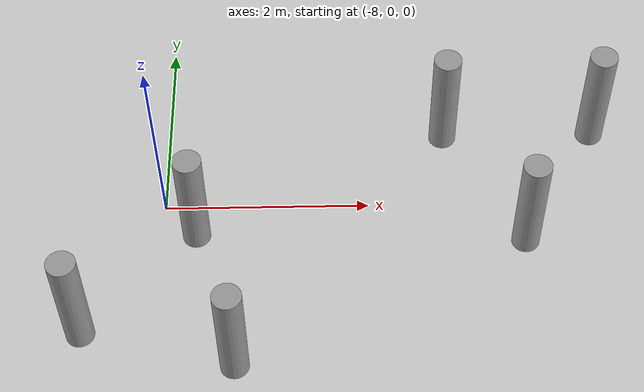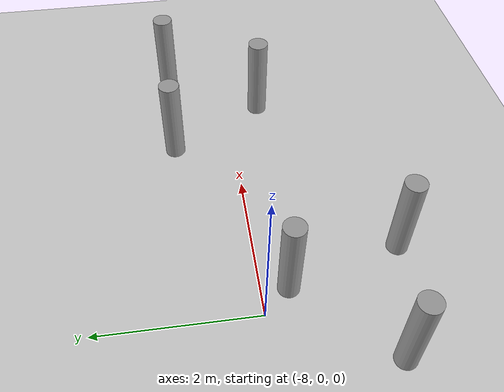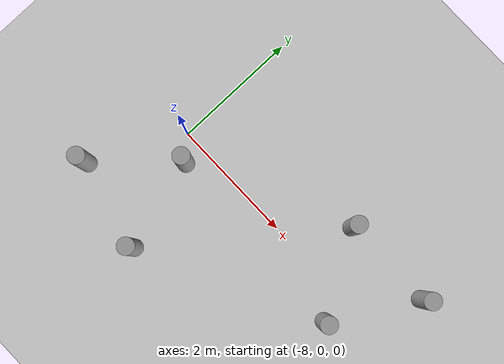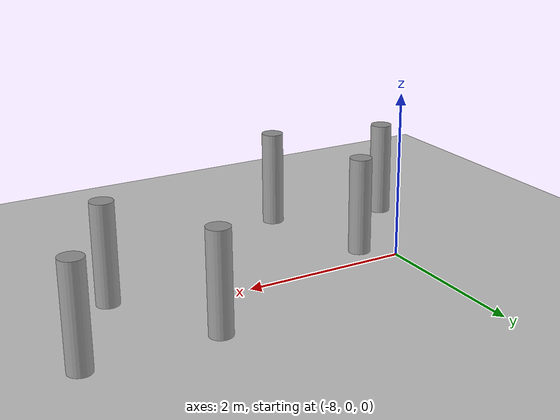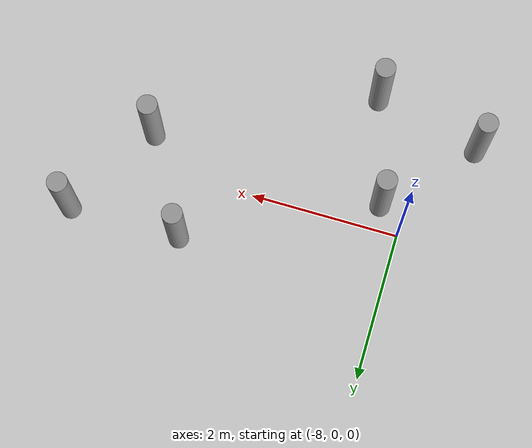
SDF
<sdf version="1.7">
 <world name="default">
  <model name="ground_plane">
   <static>1</static>
   <link name="link">
    <collision name="collision">
     <geometry><plane><normal>0 0 1</normal><size>100 100</size></plane></geometry>
     <surface>
      <contact><collide_bitmask>65535</collide_bitmask></contact>
      <friction><ode><mu>100</mu><mu2>50</mu2></ode></friction>
     </surface>
    </collision>
    <visual name="visual">
     <cast_shadows>0</cast_shadows>
     <geometry><plane><normal>0 0 1</normal><size>100 100</size></plane></geometry>
     <material>
      <script><uri>file://media/materials/scripts/gazebo.material</uri><name>Gazebo/Grey</name></script>
     </material>
    </visual>
   </link>
  </model>
  <model name="triangle_lattice_0">
   <model name="smaller_cylinder">
    <model name="smaller_cylinder_1">
     <link name="link">
      <inertial>
       <mass>0.0872829</mass>
       <inertia>
        <ixx>0.0108064</ixx>
        <ixy>0</ixy>
        <ixz>0</ixz>
        <iyy>0.0108064</iyy>
        <iyz>0</iyz>
        <izz>0.000796093</izz>
       </inertia>
      </inertial>
      <visual name="visual">
       <geometry><cylinder><radius>0.135062</radius><length>1.19624</length></cylinder></geometry>
       <material>
        <script><name>Gazebo/Grey</name><uri>file://media/materials/scripts/gazebo.material</uri></script>
        <shader type="pixel"/>
       </material>
      </visual>
      <collision name="collision">
       <geometry><cylinder><radius>0.135062</radius><length>1.19624</length></cylinder></geometry>
       <surface>
        <friction>
         <ode><mu>1</mu><mu2>1</mu2><fdir1>0 0 0</fdir1><slip1>0</slip1><slip2>0</slip2></ode>
         <torsional>
          <coefficient>1</coefficient>
          <patch_radius>0</patch_radius>
          <surface_radius>0</surface_radius>
          <use_patch_radius>1</use_patch_radius>
          <ode><slip>0</slip></ode>
         </torsional>
        </friction>
        <bounce><restitution_coefficient>0</restitution_coefficient><threshold>1e+06</threshold></bounce>
        <contact>
         <collide_without_contact>0</collide_without_contact>
         <collide_without_contact_bitmask>1</collide_without_contact_bitmask>
         <collide_bitmask>1</collide_bitmask>
         <ode>
          <soft_cfm>0</soft_cfm>
          <soft_erp>0.2</soft_erp>
          <kp>1e+13</kp>
          <kd>1</kd>
          <max_vel>0.01</max_vel>
          <min_depth>0</min_depth>
         </ode>
         <bullet>
          <split_impulse>1</split_impulse>
          <split_impulse_penetration_threshold>-0.01</split_impulse_penetration_threshold>
          <soft_cfm>0</soft_cfm>
          <soft_erp>0.2</soft_erp>
          <kp>1e+13</kp>
          <kd>1</kd>
         </bullet>
        </contact>
       </surface>
      </collision>
     </link>
     <static>0</static>
     <pose>0.044198 -0.101528 0 0 -0 0</pose>
    </model>
    <static>1</static>
    <allow_auto_disable>0</allow_auto_disable>
    <pose>-3.76148 0.681051 0 0 -0 0</pose>
   </model>
   <model name="smaller_cylinder_0">
    <model name="smaller_cylinder_1">
     <link name="link">
      <inertial>
       <mass>0.0872829</mass>
       <inertia>
        <ixx>0.0108064</ixx>
        <ixy>0</ixy>
        <ixz>0</ixz>
        <iyy>0.0108064</iyy>
        <iyz>0</iyz>
        <izz>0.000796093</izz>
       </inertia>
      </inertial>
      <visual name="visual">
       <geometry><cylinder><radius>0.135062</radius><length>1.19624</length></cylinder></geometry>
       <material>
        <script><name>Gazebo/Grey</name><uri>file://media/materials/scripts/gazebo.material</uri></script>
        <shader type="pixel"/>
       </material>
      </visual>
      <collision name="collision">
       <geometry><cylinder><radius>0.135062</radius><length>1.19624</length></cylinder></geometry>
       <surface>
        <friction>
         <ode><mu>1</mu><mu2>1</mu2><fdir1>0 0 0</fdir1><slip1>0</slip1><slip2>0</slip2></ode>
         <torsional>
          <coefficient>1</coefficient>
          <patch_radius>0</patch_radius>
          <surface_radius>0</surface_radius>
          <use_patch_radius>1</use_patch_radius>
          <ode><slip>0</slip></ode>
         </torsional>
        </friction>
        <bounce><restitution_coefficient>0</restitution_coefficient><threshold>1e+06</threshold></bounce>
        <contact>
         <collide_without_contact>0</collide_without_contact>
         <collide_without_contact_bitmask>1</collide_without_contact_bitmask>
         <collide_bitmask>1</collide_bitmask>
         <ode>
          <soft_cfm>0</soft_cfm>
          <soft_erp>0.2</soft_erp>
          <kp>1e+13</kp>
          <kd>1</kd>
          <max_vel>0.01</max_vel>
          <min_depth>0</min_depth>
         </ode>
         <bullet>
          <split_impulse>1</split_impulse>
          <split_impulse_penetration_threshold>-0.01</split_impulse_penetration_threshold>
          <soft_cfm>0</soft_cfm>
          <soft_erp>0.2</soft_erp>
          <kp>1e+13</kp>
          <kd>1</kd>
         </bullet>
        </contact>
       </surface>
      </collision>
     </link>
     <static>0</static>
     <pose>0.044198 -0.101528 0 0 -0 0</pose>
    </model>
    <static>1</static>
    <allow_auto_disable>0</allow_auto_disable>
    <pose>-2.72489 1.77147 0 0 -0 0</pose>
   </model>
   <model name="smaller_cylinder_1">
    <model name="smaller_cylinder_1">
     <link name="link">
      <inertial>
       <mass>0.0872829</mass>
       <inertia>
        <ixx>0.0108064</ixx>
        <ixy>0</ixy>
        <ixz>0</ixz>
        <iyy>0.0108064</iyy>
        <iyz>0</iyz>
        <izz>0.000796093</izz>
       </inertia>
      </inertial>
      <visual name="visual">
       <geometry><cylinder><radius>0.135062</radius><length>1.19624</length></cylinder></geometry>
       <material>
        <script><name>Gazebo/Grey</name><uri>file://media/materials/scripts/gazebo.material</uri></script>
        <shader type="pixel"/>
       </material>
      </visual>
      <collision name="collision">
       <geometry><cylinder><radius>0.135062</radius><length>1.19624</length></cylinder></geometry>
       <surface>
        <friction>
         <ode><mu>1</mu><mu2>1</mu2><fdir1>0 0 0</fdir1><slip1>0</slip1><slip2>0</slip2></ode>
         <torsional>
          <coefficient>1</coefficient>
          <patch_radius>0</patch_radius>
          <surface_radius>0</surface_radius>
          <use_patch_radius>1</use_patch_radius>
          <ode><slip>0</slip></ode>
         </torsional>
        </friction>
        <bounce><restitution_coefficient>0</restitution_coefficient><threshold>1e+06</threshold></bounce>
        <contact>
         <collide_without_contact>0</collide_without_contact>
         <collide_without_contact_bitmask>1</collide_without_contact_bitmask>
         <collide_bitmask>1</collide_bitmask>
         <ode>
          <soft_cfm>0</soft_cfm>
          <soft_erp>0.2</soft_erp>
          <kp>1e+13</kp>
          <kd>1</kd>
          <max_vel>0.01</max_vel>
          <min_depth>0</min_depth>
         </ode>
         <bullet>
          <split_impulse>1</split_impulse>
          <split_impulse_penetration_threshold>-0.01</split_impulse_penetration_threshold>
          <soft_cfm>0</soft_cfm>
          <soft_erp>0.2</soft_erp>
          <kp>1e+13</kp>
          <kd>1</kd>
         </bullet>
        </contact>
       </surface>
      </collision>
     </link>
     <static>0</static>
     <pose>0.044198 -0.101528 0 0 -0 0</pose>
    </model>
    <static>1</static>
    <allow_auto_disable>0</allow_auto_disable>
    <pose>-2.31989 0.319731 0 0 -0 0</pose>
   </model>
   <static>1</static>
   <pose>-3.06882 -2.24027 0.598111 0 -0 -0.805665</pose>
  </model>
  <model name="triangle_lattice_1">
   <model name="smaller_cylinder">
    <model name="smaller_cylinder_1">
     <link name="link">
      <inertial>
       <mass>0.0872829</mass>
       <inertia>
        <ixx>0.0108064</ixx>
        <ixy>0</ixy>
        <ixz>0</ixz>
        <iyy>0.0108064</iyy>
        <iyz>0</iyz>
        <izz>0.000796093</izz>
       </inertia>
      </inertial>
      <visual name="visual">
       <geometry><cylinder><radius>0.135062</radius><length>1.19624</length></cylinder></geometry>
       <material>
        <script><name>Gazebo/Grey</name><uri>file://media/materials/scripts/gazebo.material</uri></script>
        <shader type="pixel"/>
       </material>
      </visual>
      <collision name="collision">
       <geometry><cylinder><radius>0.135062</radius><length>1.19624</length></cylinder></geometry>
       <surface>
        <friction>
         <ode><mu>1</mu><mu2>1</mu2><fdir1>0 0 0</fdir1><slip1>0</slip1><slip2>0</slip2></ode>
         <torsional>
          <coefficient>1</coefficient>
          <patch_radius>0</patch_radius>
          <surface_radius>0</surface_radius>
          <use_patch_radius>1</use_patch_radius>
          <ode><slip>0</slip></ode>
         </torsional>
        </friction>
        <bounce><restitution_coefficient>0</restitution_coefficient><threshold>1e+06</threshold></bounce>
        <contact>
         <collide_without_contact>0</collide_without_contact>
         <collide_without_contact_bitmask>1</collide_without_contact_bitmask>
         <collide_bitmask>1</collide_bitmask>
         <ode>
          <soft_cfm>0</soft_cfm>
          <soft_erp>0.2</soft_erp>
          <kp>1e+13</kp>
          <kd>1</kd>
          <max_vel>0.01</max_vel>
          <min_depth>0</min_depth>
         </ode>
         <bullet>
          <split_impulse>1</split_impulse>
          <split_impulse_penetration_threshold>-0.01</split_impulse_penetration_threshold>
          <soft_cfm>0</soft_cfm>
          <soft_erp>0.2</soft_erp>
          <kp>1e+13</kp>
          <kd>1</kd>
         </bullet>
        </contact>
       </surface>
      </collision>
     </link>
     <static>0</static>
     <pose>0.044198 -0.101528 0 0 -0 0</pose>
    </model>
    <static>1</static>
    <allow_auto_disable>0</allow_auto_disable>
    <pose>-3.76148 0.681051 0 0 -0 0</pose>
   </model>
   <model name="smaller_cylinder_0">
    <model name="smaller_cylinder_1">
     <link name="link">
      <inertial>
       <mass>0.0872829</mass>
       <inertia>
        <ixx>0.0108064</ixx>
        <ixy>0</ixy>
        <ixz>0</ixz>
        <iyy>0.0108064</iyy>
        <iyz>0</iyz>
        <izz>0.000796093</izz>
       </inertia>
      </inertial>
      <visual name="visual">
       <geometry><cylinder><radius>0.135062</radius><length>1.19624</length></cylinder></geometry>
       <material>
        <script><name>Gazebo/Grey</name><uri>file://media/materials/scripts/gazebo.material</uri></script>
        <shader type="pixel"/>
       </material>
      </visual>
      <collision name="collision">
       <geometry><cylinder><radius>0.135062</radius><length>1.19624</length></cylinder></geometry>
       <surface>
        <friction>
         <ode><mu>1</mu><mu2>1</mu2><fdir1>0 0 0</fdir1><slip1>0</slip1><slip2>0</slip2></ode>
         <torsional>
          <coefficient>1</coefficient>
          <patch_radius>0</patch_radius>
          <surface_radius>0</surface_radius>
          <use_patch_radius>1</use_patch_radius>
          <ode><slip>0</slip></ode>
         </torsional>
        </friction>
        <bounce><restitution_coefficient>0</restitution_coefficient><threshold>1e+06</threshold></bounce>
        <contact>
         <collide_without_contact>0</collide_without_contact>
         <collide_without_contact_bitmask>1</collide_without_contact_bitmask>
         <collide_bitmask>1</collide_bitmask>
         <ode>
          <soft_cfm>0</soft_cfm>
          <soft_erp>0.2</soft_erp>
          <kp>1e+13</kp>
          <kd>1</kd>
          <max_vel>0.01</max_vel>
          <min_depth>0</min_depth>
         </ode>
         <bullet>
          <split_impulse>1</split_impulse>
          <split_impulse_penetration_threshold>-0.01</split_impulse_penetration_threshold>
          <soft_cfm>0</soft_cfm>
          <soft_erp>0.2</soft_erp>
          <kp>1e+13</kp>
          <kd>1</kd>
         </bullet>
        </contact>
       </surface>
      </collision>
     </link>
     <static>0</static>
     <pose>0.044198 -0.101528 0 0 -0 0</pose>
    </model>
    <static>1</static>
    <allow_auto_disable>0</allow_auto_disable>
    <pose>-2.72489 1.77147 0 0 -0 0</pose>
   </model>
   <model name="smaller_cylinder_1">
    <model name="smaller_cylinder_1">
     <link name="link">
      <inertial>
       <mass>0.0872829</mass>
       <inertia>
        <ixx>0.0108064</ixx>
        <ixy>0</ixy>
        <ixz>0</ixz>
        <iyy>0.0108064</iyy>
        <iyz>0</iyz>
        <izz>0.000796093</izz>
       </inertia>
      </inertial>
      <visual name="visual">
       <geometry><cylinder><radius>0.135062</radius><length>1.19624</length></cylinder></geometry>
       <material>
        <script><name>Gazebo/Grey</name><uri>file://media/materials/scripts/gazebo.material</uri></script>
        <shader type="pixel"/>
       </material>
      </visual>
      <collision name="collision">
       <geometry><cylinder><radius>0.135062</radius><length>1.19624</length></cylinder></geometry>
       <surface>
        <friction>
         <ode><mu>1</mu><mu2>1</mu2><fdir1>0 0 0</fdir1><slip1>0</slip1><slip2>0</slip2></ode>
         <torsional>
          <coefficient>1</coefficient>
          <patch_radius>0</patch_radius>
          <surface_radius>0</surface_radius>
          <use_patch_radius>1</use_patch_radius>
          <ode><slip>0</slip></ode>
         </torsional>
        </friction>
        <bounce><restitution_coefficient>0</restitution_coefficient><threshold>1e+06</threshold></bounce>
        <contact>
         <collide_without_contact>0</collide_without_contact>
         <collide_without_contact_bitmask>1</collide_without_contact_bitmask>
         <collide_bitmask>1</collide_bitmask>
         <ode>
          <soft_cfm>0</soft_cfm>
          <soft_erp>0.2</soft_erp>
          <kp>1e+13</kp>
          <kd>1</kd>
          <max_vel>0.01</max_vel>
          <min_depth>0</min_depth>
         </ode>
         <bullet>
          <split_impulse>1</split_impulse>
          <split_impulse_penetration_threshold>-0.01</split_impulse_penetration_threshold>
          <soft_cfm>0</soft_cfm>
          <soft_erp>0.2</soft_erp>
          <kp>1e+13</kp>
          <kd>1</kd>
         </bullet>
        </contact>
       </surface>
      </collision>
     </link>
     <static>0</static>
     <pose>0.044198 -0.101528 0 0 -0 0</pose>
    </model>
    <static>1</static>
    <allow_auto_disable>0</allow_auto_disable>
    <pose>-2.31989 0.319731 0 0 -0 0</pose>
   </model>
   <static>1</static>
   <pose>-5 -2 0.598119 0 -0 0</pose>
  </model>
 </world>
</sdf>
